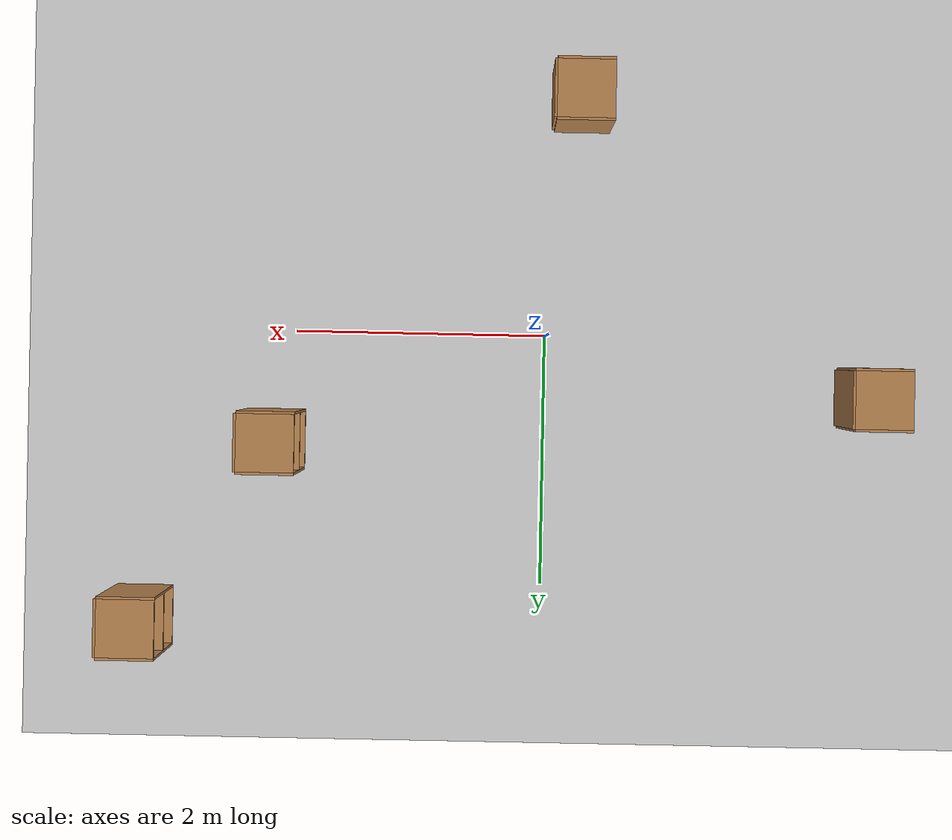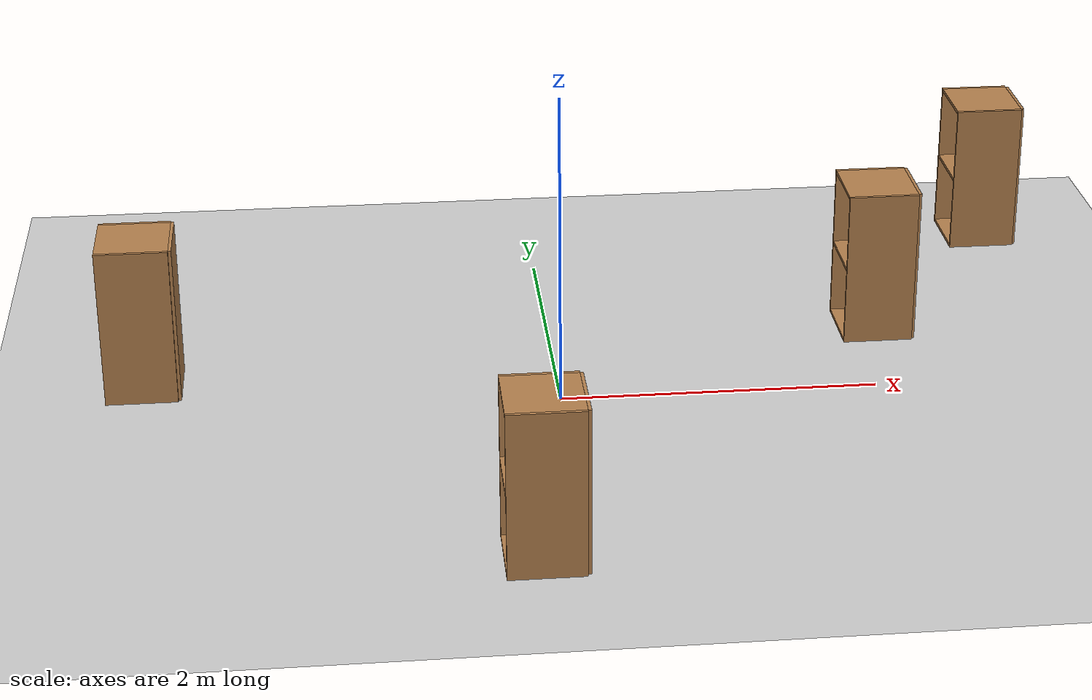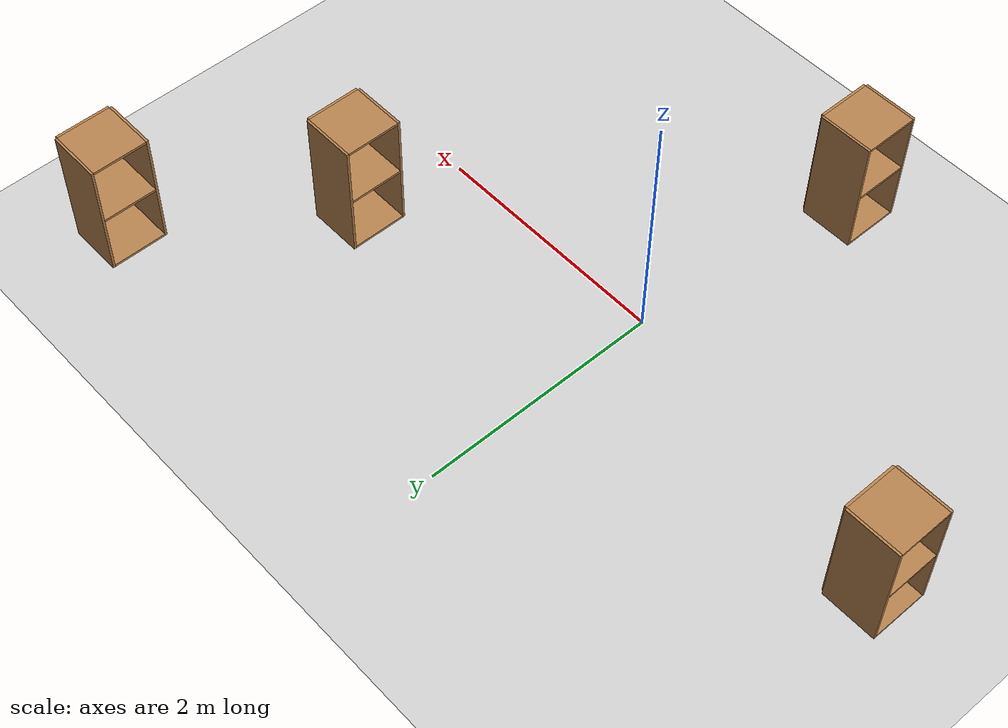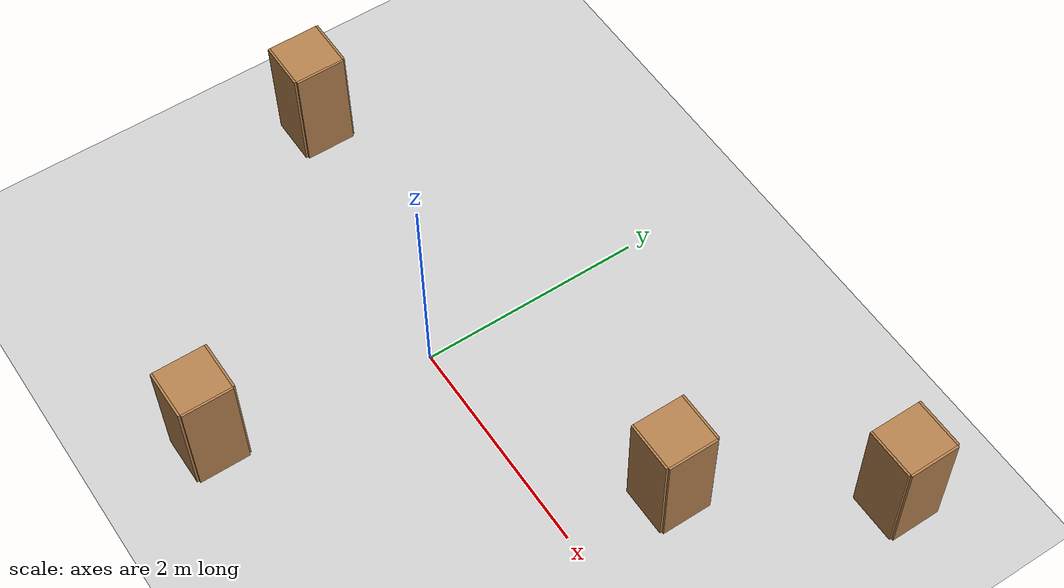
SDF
<sdf version="1.7">
 <world name="default">
  <light name="sun" type="directional">
   <pose>0 0 10 0 -0 0</pose>
   <diffuse>0.8 0.8 0.8 1</diffuse>
   <specular>0.2 0.2 0.2 1</specular>
   <attenuation>
    <range>1000</range>
    <constant>0.9</constant>
    <linear>0.01</linear>
    <quadratic>0.001</quadratic>
   </attenuation>
   <direction>-0.5 0.1 -0.9</direction>
   <spot><inner_angle>0</inner_angle><outer_angle>0</outer_angle><falloff>0</falloff></spot>
  </light>
  <model name="ground_plane">
   <static>1</static>
   <link name="link">
    <collision name="collision">
     <geometry><plane><normal>0 0 1</normal><size>100 100</size></plane></geometry>
     <surface>
      <contact><collide_bitmask>65535</collide_bitmask></contact>
      <friction><ode><mu>100</mu><mu2>50</mu2></ode></friction>
     </surface>
    </collision>
    <visual name="visual">
     <cast_shadows>0</cast_shadows>
     <geometry><plane><normal>0 0 1</normal><size>100 100</size></plane></geometry>
     <material>
      <script><uri>file://media/materials/scripts/gazebo.material</uri><name>Gazebo/Grey</name></script>
     </material>
    </visual>
   </link>
  </model>
  <gravity>0 0 -9.8</gravity>
  <magnetic_field>6e-06 2.3e-05 -4.2e-05</magnetic_field>
  <atmosphere type="adiabatic"/>
  <physics type="ode">
   <max_step_size>0.001</max_step_size>
   <real_time_factor>1</real_time_factor>
   <real_time_update_rate>1000</real_time_update_rate>
  </physics>
  <scene><ambient>0.4 0.4 0.4 1</ambient><background>0.7 0.7 0.7 1</background><shadows>1</shadows></scene>
  <audio><device>default</device></audio>
  <spherical_coordinates>
   <surface_model>EARTH_WGS84</surface_model>
   <latitude_deg>0</latitude_deg>
   <longitude_deg>0</longitude_deg>
   <elevation>0</elevation>
   <heading_deg>0</heading_deg>
  </spherical_coordinates>
  <model name="cabinet">
   <static>1</static>
   <link name="cabinet_bottom_plate">
    <inertial>
     <pose>0 0 -1 0 -0 0</pose>
     <inertia><ixx>2.05</ixx><ixy>0</ixy><ixz>0</ixz><iyy>2.05</iyy><iyz>0</iyz><izz>2.05</izz></inertia>
     <mass>25</mass>
    </inertial>
    <collision name="cabinet_bottom_plate_geom">
     <pose>0 0 0.01 0 -0 0</pose>
     <geometry><box><size>0.45 0.45 0.02</size></box></geometry>
    </collision>
    <visual name="cabinet_bottom_plate_geom_visual">
     <pose>0 0 0.01 0 -0 0</pose>
     <geometry><box><size>0.45 0.45 0.02</size></box></geometry>
     <material>
      <script><uri>file://media/materials/scripts/gazebo.material</uri><name>Gazebo/Wood</name></script>
     </material>
    </visual>
    <collision name="cabinet_bottom_plate_geom_cabinet_back_plate">
     <pose>0.235 0 0.51 0 -0 0</pose>
     <geometry><box><size>0.02 0.45 1.02</size></box></geometry>
    </collision>
    <visual name="cabinet_bottom_plate_geom_cabinet_back_plate_visual">
     <pose>0.235 0 0.51 0 -0 0</pose>
     <geometry><box><size>0.02 0.45 1.02</size></box></geometry>
     <material>
      <script><uri>file://media/materials/scripts/gazebo.material</uri><name>Gazebo/Wood</name></script>
     </material>
    </visual>
    <collision name="cabinet_bottom_plate_geom_cabinet_left_plate">
     <pose>0 0.235 0.51 0 -0 0</pose>
     <geometry><box><size>0.45 0.02 1.02</size></box></geometry>
    </collision>
    <visual name="cabinet_bottom_plate_geom_cabinet_left_plate_visual">
     <pose>0 0.235 0.51 0 -0 0</pose>
     <geometry><box><size>0.45 0.02 1.02</size></box></geometry>
     <material>
      <script><uri>file://media/materials/scripts/gazebo.material</uri><name>Gazebo/Wood</name></script>
     </material>
    </visual>
    <collision name="cabinet_bottom_plate_geom_cabinet_middle_plate">
     <pose>0 0 0.51 0 -0 0</pose>
     <geometry><box><size>0.45 0.45 0.02</size></box></geometry>
    </collision>
    <visual name="cabinet_bottom_plate_geom_cabinet_middle_plate_visual">
     <pose>0 0 0.51 0 -0 0</pose>
     <geometry><box><size>0.45 0.45 0.02</size></box></geometry>
     <material>
      <script><uri>file://media/materials/scripts/gazebo.material</uri><name>Gazebo/Wood</name></script>
     </material>
    </visual>
    <collision name="cabinet_bottom_plate_geom_cabinet_right_plate">
     <pose>0 -0.235 0.51 0 -0 0</pose>
     <geometry><box><size>0.45 0.02 1.02</size></box></geometry>
    </collision>
    <visual name="cabinet_bottom_plate_geom_cabinet_right_plate_visual">
     <pose>0 -0.235 0.51 0 -0 0</pose>
     <geometry><box><size>0.45 0.02 1.02</size></box></geometry>
     <material>
      <script><uri>file://media/materials/scripts/gazebo.material</uri><name>Gazebo/Wood</name></script>
     </material>
    </visual>
    <collision name="cabinet_bottom_plate_geom_cabinet_top_plate">
     <pose>0 0 1.01 0 -0 0</pose>
     <geometry><box><size>0.45 0.45 0.02</size></box></geometry>
    </collision>
    <visual name="cabinet_bottom_plate_geom_cabinet_top_plate_visual">
     <pose>0 0 1.01 0 -0 0</pose>
     <geometry><box><size>0.45 0.45 0.02</size></box></geometry>
     <material>
      <script><uri>file://media/materials/scripts/gazebo.material</uri><name>Gazebo/Wood</name></script>
     </material>
    </visual>
   </link>
   <pose>3.18872 2.31184 0 0 -0 0</pose>
  </model>
  <model name="cabinet_clone">
   <static>1</static>
   <link name="cabinet_bottom_plate">
    <inertial>
     <pose>0 0 -1 0 -0 0</pose>
     <inertia><ixx>2.05</ixx><ixy>0</ixy><ixz>0</ixz><iyy>2.05</iyy><iyz>0</iyz><izz>2.05</izz></inertia>
     <mass>25</mass>
    </inertial>
    <collision name="cabinet_bottom_plate_geom">
     <pose>0 0 0.01 0 -0 0</pose>
     <geometry><box><size>0.45 0.45 0.02</size></box></geometry>
    </collision>
    <visual name="cabinet_bottom_plate_geom_visual">
     <pose>0 0 0.01 0 -0 0</pose>
     <geometry><box><size>0.45 0.45 0.02</size></box></geometry>
     <material>
      <script><uri>file://media/materials/scripts/gazebo.material</uri><name>Gazebo/Wood</name></script>
     </material>
    </visual>
    <collision name="cabinet_bottom_plate_geom_cabinet_back_plate">
     <pose>0.235 0 0.51 0 -0 0</pose>
     <geometry><box><size>0.02 0.45 1.02</size></box></geometry>
    </collision>
    <visual name="cabinet_bottom_plate_geom_cabinet_back_plate_visual">
     <pose>0.235 0 0.51 0 -0 0</pose>
     <geometry><box><size>0.02 0.45 1.02</size></box></geometry>
     <material>
      <script><uri>file://media/materials/scripts/gazebo.material</uri><name>Gazebo/Wood</name></script>
     </material>
    </visual>
    <collision name="cabinet_bottom_plate_geom_cabinet_left_plate">
     <pose>0 0.235 0.51 0 -0 0</pose>
     <geometry><box><size>0.45 0.02 1.02</size></box></geometry>
    </collision>
    <visual name="cabinet_bottom_plate_geom_cabinet_left_plate_visual">
     <pose>0 0.235 0.51 0 -0 0</pose>
     <geometry><box><size>0.45 0.02 1.02</size></box></geometry>
     <material>
      <script><uri>file://media/materials/scripts/gazebo.material</uri><name>Gazebo/Wood</name></script>
     </material>
    </visual>
    <collision name="cabinet_bottom_plate_geom_cabinet_middle_plate">
     <pose>0 0 0.51 0 -0 0</pose>
     <geometry><box><size>0.45 0.45 0.02</size></box></geometry>
    </collision>
    <visual name="cabinet_bottom_plate_geom_cabinet_middle_plate_visual">
     <pose>0 0 0.51 0 -0 0</pose>
     <geometry><box><size>0.45 0.45 0.02</size></box></geometry>
     <material>
      <script><uri>file://media/materials/scripts/gazebo.material</uri><name>Gazebo/Wood</name></script>
     </material>
    </visual>
    <collision name="cabinet_bottom_plate_geom_cabinet_right_plate">
     <pose>0 -0.235 0.51 0 -0 0</pose>
     <geometry><box><size>0.45 0.02 1.02</size></box></geometry>
    </collision>
    <visual name="cabinet_bottom_plate_geom_cabinet_right_plate_visual">
     <pose>0 -0.235 0.51 0 -0 0</pose>
     <geometry><box><size>0.45 0.02 1.02</size></box></geometry>
     <material>
      <script><uri>file://media/materials/scripts/gazebo.material</uri><name>Gazebo/Wood</name></script>
     </material>
    </visual>
    <collision name="cabinet_bottom_plate_geom_cabinet_top_plate">
     <pose>0 0 1.01 0 -0 0</pose>
     <geometry><box><size>0.45 0.45 0.02</size></box></geometry>
    </collision>
    <visual name="cabinet_bottom_plate_geom_cabinet_top_plate_visual">
     <pose>0 0 1.01 0 -0 0</pose>
     <geometry><box><size>0.45 0.45 0.02</size></box></geometry>
     <material>
      <script><uri>file://media/materials/scripts/gazebo.material</uri><name>Gazebo/Wood</name></script>
     </material>
    </visual>
   </link>
   <pose>2.14403 0.867383 0 0 -0 0</pose>
  </model>
  <model name="cabinet_clone_0">
   <static>1</static>
   <link name="cabinet_bottom_plate">
    <inertial>
     <pose>0 0 -1 0 -0 0</pose>
     <inertia><ixx>2.05</ixx><ixy>0</ixy><ixz>0</ixz><iyy>2.05</iyy><iyz>0</iyz><izz>2.05</izz></inertia>
     <mass>25</mass>
    </inertial>
    <collision name="cabinet_bottom_plate_geom">
     <pose>0 0 0.01 0 -0 0</pose>
     <geometry><box><size>0.45 0.45 0.02</size></box></geometry>
    </collision>
    <visual name="cabinet_bottom_plate_geom_visual">
     <pose>0 0 0.01 0 -0 0</pose>
     <geometry><box><size>0.45 0.45 0.02</size></box></geometry>
     <material>
      <script><uri>file://media/materials/scripts/gazebo.material</uri><name>Gazebo/Wood</name></script>
     </material>
    </visual>
    <collision name="cabinet_bottom_plate_geom_cabinet_back_plate">
     <pose>0.235 0 0.51 0 -0 0</pose>
     <geometry><box><size>0.02 0.45 1.02</size></box></geometry>
    </collision>
    <visual name="cabinet_bottom_plate_geom_cabinet_back_plate_visual">
     <pose>0.235 0 0.51 0 -0 0</pose>
     <geometry><box><size>0.02 0.45 1.02</size></box></geometry>
     <material>
      <script><uri>file://media/materials/scripts/gazebo.material</uri><name>Gazebo/Wood</name></script>
     </material>
    </visual>
    <collision name="cabinet_bottom_plate_geom_cabinet_left_plate">
     <pose>0 0.235 0.51 0 -0 0</pose>
     <geometry><box><size>0.45 0.02 1.02</size></box></geometry>
    </collision>
    <visual name="cabinet_bottom_plate_geom_cabinet_left_plate_visual">
     <pose>0 0.235 0.51 0 -0 0</pose>
     <geometry><box><size>0.45 0.02 1.02</size></box></geometry>
     <material>
      <script><uri>file://media/materials/scripts/gazebo.material</uri><name>Gazebo/Wood</name></script>
     </material>
    </visual>
    <collision name="cabinet_bottom_plate_geom_cabinet_middle_plate">
     <pose>0 0 0.51 0 -0 0</pose>
     <geometry><box><size>0.45 0.45 0.02</size></box></geometry>
    </collision>
    <visual name="cabinet_bottom_plate_geom_cabinet_middle_plate_visual">
     <pose>0 0 0.51 0 -0 0</pose>
     <geometry><box><size>0.45 0.45 0.02</size></box></geometry>
     <material>
      <script><uri>file://media/materials/scripts/gazebo.material</uri><name>Gazebo/Wood</name></script>
     </material>
    </visual>
    <collision name="cabinet_bottom_plate_geom_cabinet_right_plate">
     <pose>0 -0.235 0.51 0 -0 0</pose>
     <geometry><box><size>0.45 0.02 1.02</size></box></geometry>
    </collision>
    <visual name="cabinet_bottom_plate_geom_cabinet_right_plate_visual">
     <pose>0 -0.235 0.51 0 -0 0</pose>
     <geometry><box><size>0.45 0.02 1.02</size></box></geometry>
     <material>
      <script><uri>file://media/materials/scripts/gazebo.material</uri><name>Gazebo/Wood</name></script>
     </material>
    </visual>
    <collision name="cabinet_bottom_plate_geom_cabinet_top_plate">
     <pose>0 0 1.01 0 -0 0</pose>
     <geometry><box><size>0.45 0.45 0.02</size></box></geometry>
    </collision>
    <visual name="cabinet_bottom_plate_geom_cabinet_top_plate_visual">
     <pose>0 0 1.01 0 -0 0</pose>
     <geometry><box><size>0.45 0.45 0.02</size></box></geometry>
     <material>
      <script><uri>file://media/materials/scripts/gazebo.material</uri><name>Gazebo/Wood</name></script>
     </material>
    </visual>
   </link>
   <pose>-2.60365 0.446608 0 0 -0 0</pose>
  </model>
  <model name="cabinet_clone_1">
   <static>1</static>
   <link name="cabinet_bottom_plate">
    <inertial>
     <pose>0 0 -1 0 -0 0</pose>
     <inertia><ixx>2.05</ixx><ixy>0</ixy><ixz>0</ixz><iyy>2.05</iyy><iyz>0</iyz><izz>2.05</izz></inertia>
     <mass>25</mass>
    </inertial>
    <collision name="cabinet_bottom_plate_geom">
     <pose>0 0 0.01 0 -0 0</pose>
     <geometry><box><size>0.45 0.45 0.02</size></box></geometry>
    </collision>
    <visual name="cabinet_bottom_plate_geom_visual">
     <pose>0 0 0.01 0 -0 0</pose>
     <geometry><box><size>0.45 0.45 0.02</size></box></geometry>
     <material>
      <script><uri>file://media/materials/scripts/gazebo.material</uri><name>Gazebo/Wood</name></script>
     </material>
    </visual>
    <collision name="cabinet_bottom_plate_geom_cabinet_back_plate">
     <pose>0.235 0 0.51 0 -0 0</pose>
     <geometry><box><size>0.02 0.45 1.02</size></box></geometry>
    </collision>
    <visual name="cabinet_bottom_plate_geom_cabinet_back_plate_visual">
     <pose>0.235 0 0.51 0 -0 0</pose>
     <geometry><box><size>0.02 0.45 1.02</size></box></geometry>
     <material>
      <script><uri>file://media/materials/scripts/gazebo.material</uri><name>Gazebo/Wood</name></script>
     </material>
    </visual>
    <collision name="cabinet_bottom_plate_geom_cabinet_left_plate">
     <pose>0 0.235 0.51 0 -0 0</pose>
     <geometry><box><size>0.45 0.02 1.02</size></box></geometry>
    </collision>
    <visual name="cabinet_bottom_plate_geom_cabinet_left_plate_visual">
     <pose>0 0.235 0.51 0 -0 0</pose>
     <geometry><box><size>0.45 0.02 1.02</size></box></geometry>
     <material>
      <script><uri>file://media/materials/scripts/gazebo.material</uri><name>Gazebo/Wood</name></script>
     </material>
    </visual>
    <collision name="cabinet_bottom_plate_geom_cabinet_middle_plate">
     <pose>0 0 0.51 0 -0 0</pose>
     <geometry><box><size>0.45 0.45 0.02</size></box></geometry>
    </collision>
    <visual name="cabinet_bottom_plate_geom_cabinet_middle_plate_visual">
     <pose>0 0 0.51 0 -0 0</pose>
     <geometry><box><size>0.45 0.45 0.02</size></box></geometry>
     <material>
      <script><uri>file://media/materials/scripts/gazebo.material</uri><name>Gazebo/Wood</name></script>
     </material>
    </visual>
    <collision name="cabinet_bottom_plate_geom_cabinet_right_plate">
     <pose>0 -0.235 0.51 0 -0 0</pose>
     <geometry><box><size>0.45 0.02 1.02</size></box></geometry>
    </collision>
    <visual name="cabinet_bottom_plate_geom_cabinet_right_plate_visual">
     <pose>0 -0.235 0.51 0 -0 0</pose>
     <geometry><box><size>0.45 0.02 1.02</size></box></geometry>
     <material>
      <script><uri>file://media/materials/scripts/gazebo.material</uri><name>Gazebo/Wood</name></script>
     </material>
    </visual>
    <collision name="cabinet_bottom_plate_geom_cabinet_top_plate">
     <pose>0 0 1.01 0 -0 0</pose>
     <geometry><box><size>0.45 0.45 0.02</size></box></geometry>
    </collision>
    <visual name="cabinet_bottom_plate_geom_cabinet_top_plate_visual">
     <pose>0 0 1.01 0 -0 0</pose>
     <geometry><box><size>0.45 0.45 0.02</size></box></geometry>
     <material>
      <script><uri>file://media/materials/scripts/gazebo.material</uri><name>Gazebo/Wood</name></script>
     </material>
    </visual>
   </link>
   <pose>-0.27281 -1.90283 0 0 -0 0</pose>
  </model>
 </world>
</sdf>
